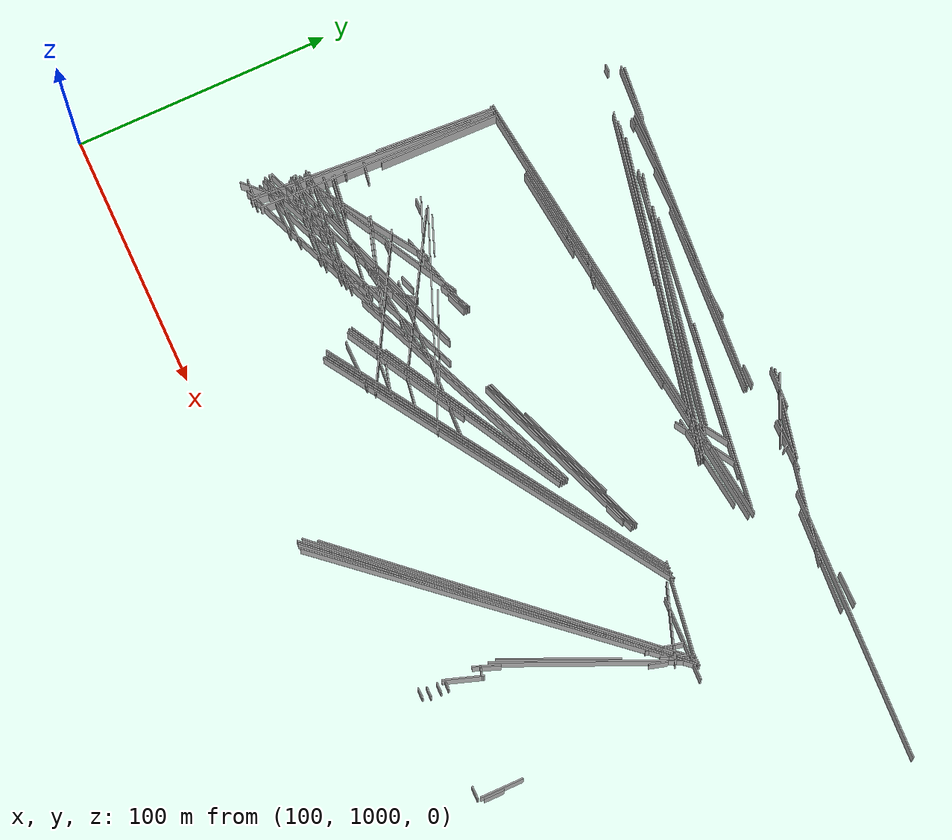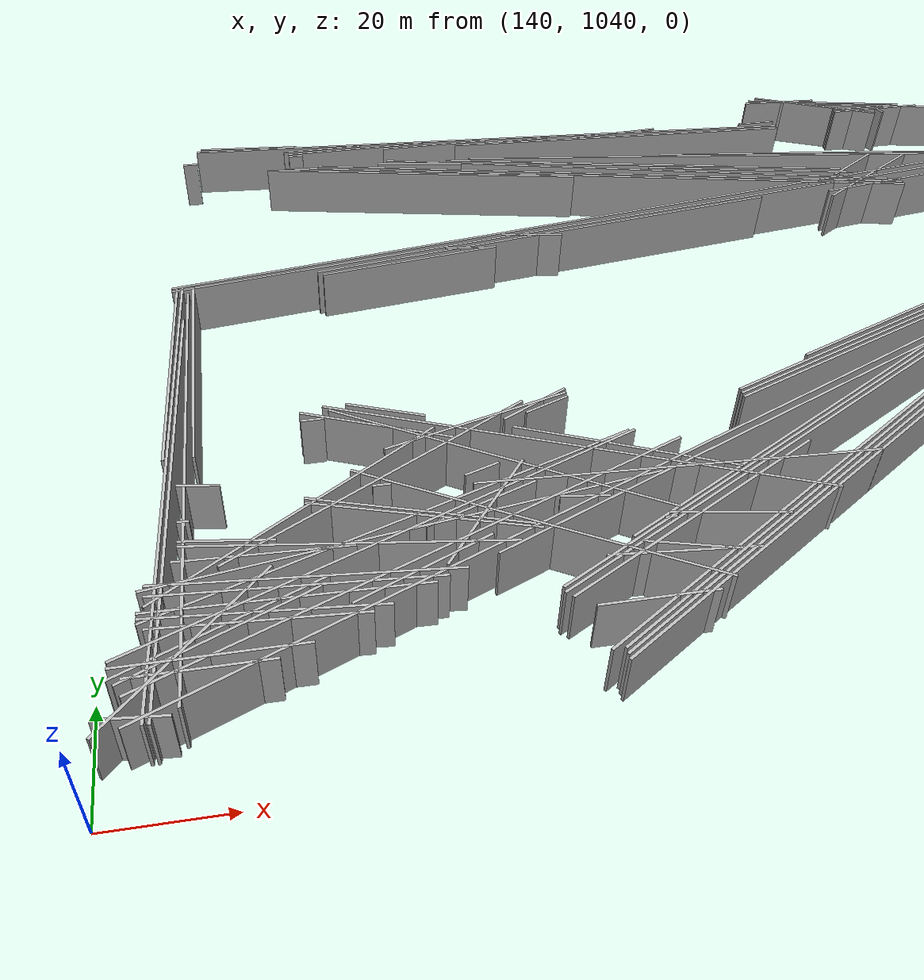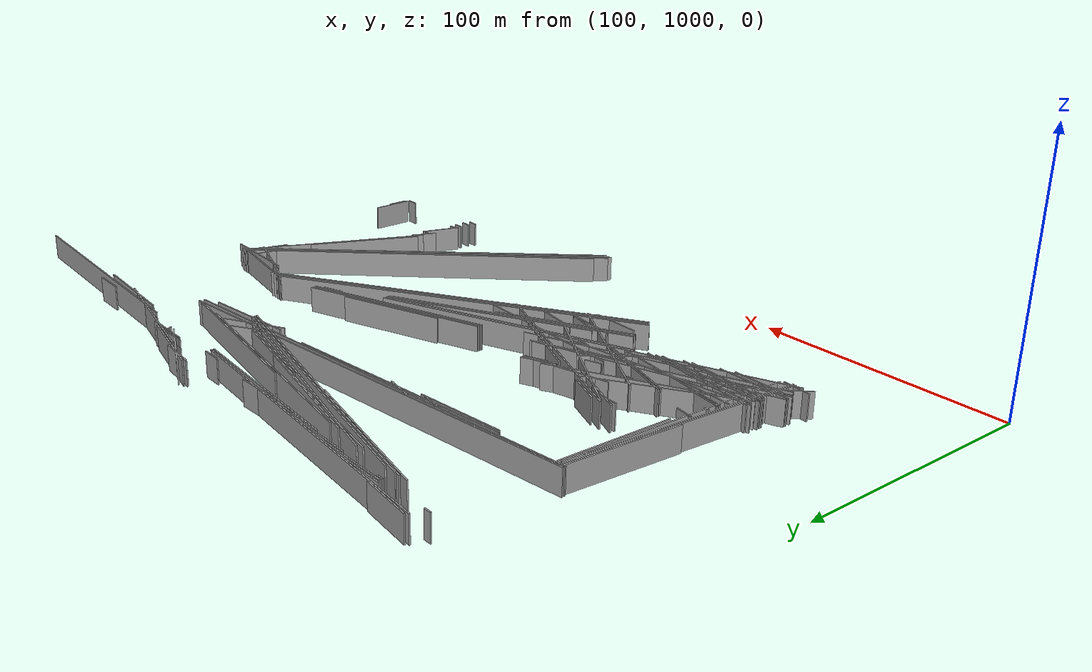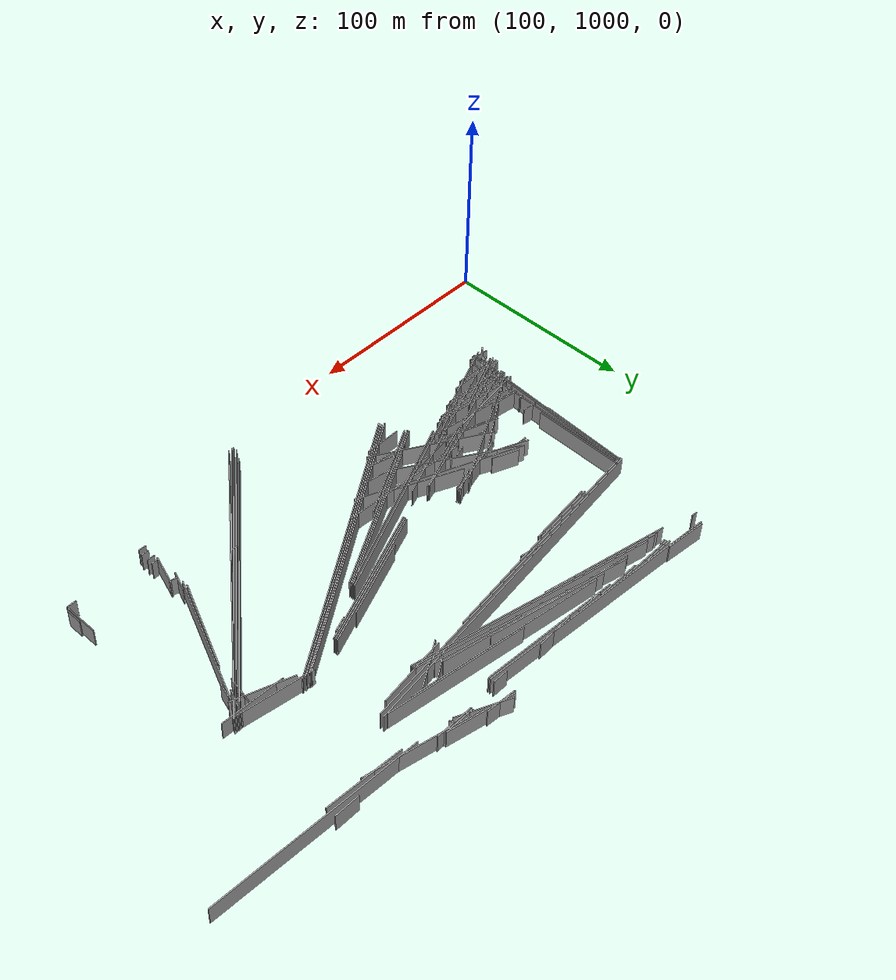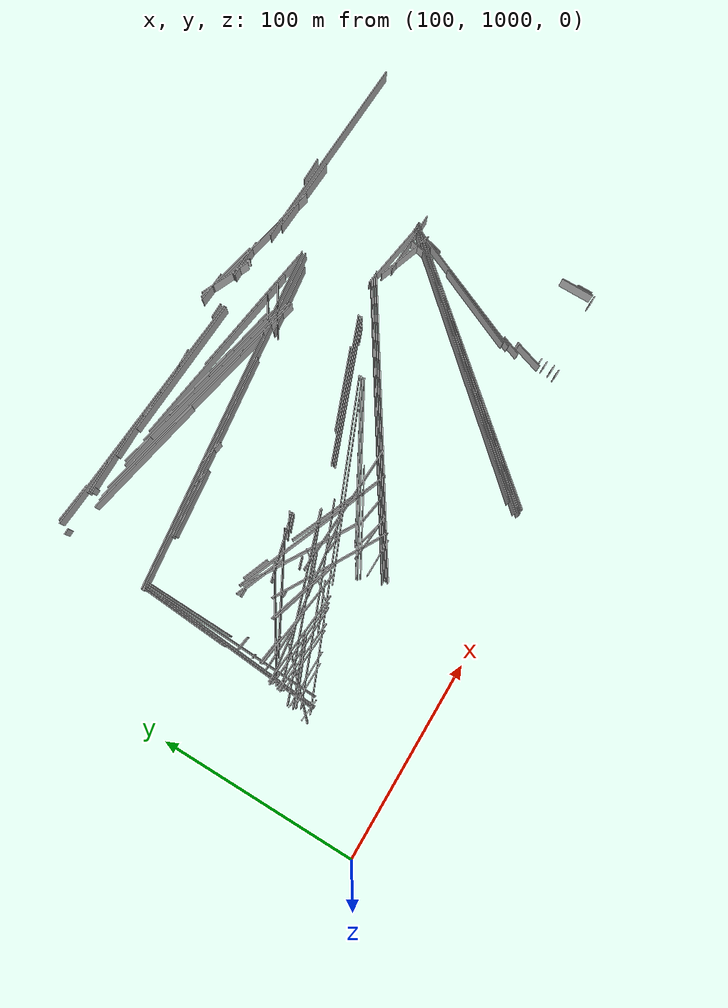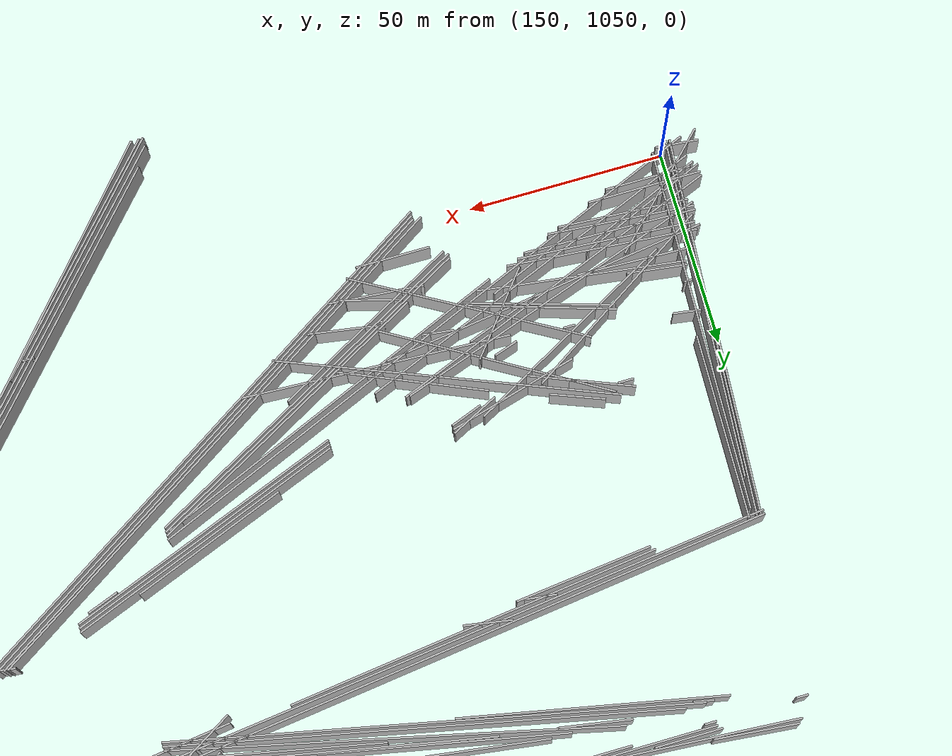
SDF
<sdf version="1.6">
 <model name="Worldsegments">
  <static>1</static>
  <link name="Wall_31">
   <pose>243.5 1156.0 5.0 0 0 0.12095365</pose>
   <collision name="Wall_31_Collision"><geometry><box><size>182.3321 0.5 10.0</size></box></geometry></collision>
   <visual name="Wall_31_Visual"><geometry><box><size>182.3321 0.5 10.0</size></box></geometry></visual>
  </link>
  <link name="Wall_35">
   <pose>219.5 1080.5 5.0 0 0 0.4000217</pose>
   <collision name="Wall_35_Collision">
    <geometry><box><size>161.77144 0.5 10.0</size></box></geometry>
   </collision>
   <visual name="Wall_35_Visual"><geometry><box><size>161.77144 0.5 10.0</size></box></geometry></visual>
  </link>
  <link name="Wall_36">
   <pose>187.5 1080.0 5.0 0 0 0.3328202</pose>
   <collision name="Wall_36_Collision"><geometry><box><size>85.70297 0.5 10.0</size></box></geometry></collision>
   <visual name="Wall_36_Visual"><geometry><box><size>85.70297 0.5 10.0</size></box></geometry></visual>
  </link>
  <link name="Wall_39">
   <pose>386.5 1185.0 5.0 0 0 -0.03736578</pose>
   <collision name="Wall_39_Collision">
    <geometry><box><size>107.07474 0.5 10.0</size></box></geometry>
   </collision>
   <visual name="Wall_39_Visual"><geometry><box><size>107.07474 0.5 10.0</size></box></geometry></visual>
  </link>
  <link name="Wall_46">
   <pose>285.0 1113.5 5.0 0 0 0.36813077</pose>
   <collision name="Wall_46_Collision">
    <geometry><box><size>75.026665 0.5 10.0</size></box></geometry>
   </collision>
   <visual name="Wall_46_Visual"><geometry><box><size>75.026665 0.5 10.0</size></box></geometry></visual>
  </link>
  <link name="Wall_52">
   <pose>285.0 1114.5 5.0 0 0 0.36813077</pose>
   <collision name="Wall_52_Collision">
    <geometry><box><size>75.026665 0.5 10.0</size></box></geometry>
   </collision>
   <visual name="Wall_52_Visual"><geometry><box><size>75.026665 0.5 10.0</size></box></geometry></visual>
  </link>
  <link name="Wall_54">
   <pose>254.0 1173.5 5.0 0 0 -0.22747499</pose>
   <collision name="Wall_54_Collision">
    <geometry><box><size>110.85576 0.5 10.0</size></box></geometry>
   </collision>
   <visual name="Wall_54_Visual"><geometry><box><size>110.85576 0.5 10.0</size></box></geometry></visual>
  </link>
  <link name="Wall_63">
   <pose>244.0 1172.5 5.0 0 0 -0.20788993</pose>
   <collision name="Wall_63_Collision">
    <geometry><box><size>130.81667 0.5 10.0</size></box></geometry>
   </collision>
   <visual name="Wall_63_Visual"><geometry><box><size>130.81667 0.5 10.0</size></box></geometry></visual>
  </link>
  <link name="Wall_78">
   <pose>365.5 1125.5 5.0 0 0 -0.03029376</pose>
   <collision name="Wall_78_Collision"><geometry><box><size>33.01515 0.5 10.0</size></box></geometry></collision>
   <visual name="Wall_78_Visual"><geometry><box><size>33.01515 0.5 10.0</size></box></geometry></visual>
  </link>
  <link name="Wall_85">
   <pose>278.5 1091.0 5.0 0 0 0.57332474</pose>
   <collision name="Wall_85_Collision">
    <geometry><box><size>151.17209 0.5 10.0</size></box></geometry>
   </collision>
   <visual name="Wall_85_Visual"><geometry><box><size>151.17209 0.5 10.0</size></box></geometry></visual>
  </link>
  <link name="Wall_86">
   <pose>253.0 1188.0 5.0 0 0 -0.0540015</pose>
   <collision name="Wall_86_Collision"><geometry><box><size>74.10803 0.5 10.0</size></box></geometry></collision>
   <visual name="Wall_86_Visual"><geometry><box><size>74.10803 0.5 10.0</size></box></geometry></visual>
  </link>
  <link name="Wall_89">
   <pose>234.0 1084.5 5.0 0 0 -0.044089057</pose>
   <collision name="Wall_89_Collision"><geometry><box><size>68.06615 0.5 10.0</size></box></geometry></collision>
   <visual name="Wall_89_Visual"><geometry><box><size>68.06615 0.5 10.0</size></box></geometry></visual>
  </link>
  <link name="Wall_92">
   <pose>360.0 1184.0 5.0 0 0 -0.049958397</pose>
   <collision name="Wall_92_Collision"><geometry><box><size>40.04997 0.5 10.0</size></box></geometry></collision>
   <visual name="Wall_92_Visual"><geometry><box><size>40.04997 0.5 10.0</size></box></geometry></visual>
  </link>
  <link name="Wall_97">
   <pose>327.0 1069.5 5.0 0 0 0.8550527</pose>
   <collision name="Wall_97_Collision"><geometry><box><size>152.3975 0.5 10.0</size></box></geometry></collision>
   <visual name="Wall_97_Visual"><geometry><box><size>152.3975 0.5 10.0</size></box></geometry></visual>
  </link>
  <link name="Wall_99">
   <pose>325.0 1070.5 5.0 0 0 0.8365164</pose>
   <collision name="Wall_99_Collision"><geometry><box><size>152.2268 0.5 10.0</size></box></geometry></collision>
   <visual name="Wall_99_Visual"><geometry><box><size>152.2268 0.5 10.0</size></box></geometry></visual>
  </link>
  <link name="Wall_112">
   <pose>243.5 1157.5 5.0 0 0 0.12639442</pose>
   <collision name="Wall_112_Collision">
    <geometry><box><size>182.45547 0.5 10.0</size></box></geometry>
   </collision>
   <visual name="Wall_112_Visual"><geometry><box><size>182.45547 0.5 10.0</size></box></geometry></visual>
  </link>
  <link name="Wall_115">
   <pose>146.5 1050.5 5.0 0 0 -0.09065989</pose>
   <collision name="Wall_115_Collision">
    <geometry><box><size>11.045361 0.5 10.0</size></box></geometry>
   </collision>
   <visual name="Wall_115_Visual"><geometry><box><size>11.045361 0.5 10.0</size></box></geometry></visual>
  </link>
  <link name="Wall_133">
   <pose>279.5 1090.5 5.0 0 0 0.5717292</pose>
   <collision name="Wall_133_Collision">
    <geometry><box><size>153.39491 0.5 10.0</size></box></geometry>
   </collision>
   <visual name="Wall_133_Visual"><geometry><box><size>153.39491 0.5 10.0</size></box></geometry></visual>
  </link>
  <link name="Wall_135">
   <pose>268.5 1177.0 5.0 0 0 -0.13773619</pose>
   <collision name="Wall_135_Collision">
    <geometry><box><size>101.96568 0.5 10.0</size></box></geometry>
   </collision>
   <visual name="Wall_135_Visual"><geometry><box><size>101.96568 0.5 10.0</size></box></geometry></visual>
  </link>
  <link name="Wall_139">
   <pose>246.5 1173.0 5.0 0 0 -0.20831557</pose>
   <collision name="Wall_139_Collision">
    <geometry><box><size>125.71794 0.5 10.0</size></box></geometry>
   </collision>
   <visual name="Wall_139_Visual"><geometry><box><size>125.71794 0.5 10.0</size></box></geometry></visual>
  </link>
  <link name="Wall_140">
   <pose>224.5 1191.5 5.0 0 0 -0.0685945</pose>
   <collision name="Wall_140_Collision">
    <geometry><box><size>131.30879 0.5 10.0</size></box></geometry>
   </collision>
   <visual name="Wall_140_Visual"><geometry><box><size>131.30879 0.5 10.0</size></box></geometry></visual>
  </link>
  <link name="Wall_142">
   <pose>385.5 1033.0 5.0 0 0 0.0</pose>
   <collision name="Wall_142_Collision"><geometry><box><size>5.0 0.5 10.0</size></box></geometry></collision>
   <visual name="Wall_142_Visual"><geometry><box><size>5.0 0.5 10.0</size></box></geometry></visual>
  </link>
  <link name="Wall_143">
   <pose>309.5 1161.5 5.0 0 0 0.13432144</pose>
   <collision name="Wall_143_Collision">
    <geometry><box><size>37.336308 0.5 10.0</size></box></geometry>
   </collision>
   <visual name="Wall_143_Visual"><geometry><box><size>37.336308 0.5 10.0</size></box></geometry></visual>
  </link>
  <link name="Wall_144">
   <pose>285.0 1112.5 5.0 0 0 0.36813077</pose>
   <collision name="Wall_144_Collision">
    <geometry><box><size>75.026665 0.5 10.0</size></box></geometry>
   </collision>
   <visual name="Wall_144_Visual"><geometry><box><size>75.026665 0.5 10.0</size></box></geometry></visual>
  </link>
  <link name="Wall_146">
   <pose>325.5 1073.0 5.0 0 0 0.8390053</pose>
   <collision name="Wall_146_Collision">
    <geometry><box><size>145.16542 0.5 10.0</size></box></geometry>
   </collision>
   <visual name="Wall_146_Visual"><geometry><box><size>145.16542 0.5 10.0</size></box></geometry></visual>
  </link>
  <link name="Wall_153">
   <pose>151.5 1097.5 5.0 0 0 1.4987563</pose>
   <collision name="Wall_153_Collision">
    <geometry><box><size>97.25225 0.5 10.0</size></box></geometry>
   </collision>
   <visual name="Wall_153_Visual"><geometry><box><size>97.25225 0.5 10.0</size></box></geometry></visual>
  </link>
  <link name="Wall_162">
   <pose>169.0 1067.5 5.0 0 0 -0.02272336</pose>
   <collision name="Wall_162_Collision">
    <geometry><box><size>44.011364 0.5 10.0</size></box></geometry>
   </collision>
   <visual name="Wall_162_Visual"><geometry><box><size>44.011364 0.5 10.0</size></box></geometry></visual>
  </link>
  <link name="Wall_168">
   <pose>251.5 1086.5 5.0 0 0 0.5050985</pose>
   <collision name="Wall_168_Collision">
    <geometry><box><size>97.128784 0.5 10.0</size></box></geometry>
   </collision>
   <visual name="Wall_168_Visual"><geometry><box><size>97.128784 0.5 10.0</size></box></geometry></visual>
  </link>
  <link name="Wall_181">
   <pose>228.5 1153.0 5.0 0 0 0.12565033</pose>
   <collision name="Wall_181_Collision"><geometry><box><size>95.7549 0.5 10.0</size></box></geometry></collision>
   <visual name="Wall_181_Visual"><geometry><box><size>95.7549 0.5 10.0</size></box></geometry></visual>
  </link>
  <link name="Wall_199">
   <pose>172.0 1071.0 5.0 0 0 -0.08314123</pose>
   <collision name="Wall_199_Collision">
    <geometry><box><size>48.166378 0.5 10.0</size></box></geometry>
   </collision>
   <visual name="Wall_199_Visual"><geometry><box><size>48.166378 0.5 10.0</size></box></geometry></visual>
  </link>
  <link name="Wall_203">
   <pose>359.5 1092.0 5.0 0 0 1.1538982</pose>
   <collision name="Wall_203_Collision">
    <geometry><box><size>76.55717 0.5 10.0</size></box></geometry>
   </collision>
   <visual name="Wall_203_Visual"><geometry><box><size>76.55717 0.5 10.0</size></box></geometry></visual>
  </link>
  <link name="Wall_207">
   <pose>160.5 1080.0 5.0 0 0 -0.13255154</pose>
   <collision name="Wall_207_Collision">
    <geometry><box><size>15.132746 0.5 10.0</size></box></geometry>
   </collision>
   <visual name="Wall_207_Visual"><geometry><box><size>15.132746 0.5 10.0</size></box></geometry></visual>
  </link>
  <link name="Wall_212">
   <pose>357.0 1129.0 5.0 0 0 -0.14888994</pose>
   <collision name="Wall_212_Collision"><geometry><box><size>40.4475 0.5 10.0</size></box></geometry></collision>
   <visual name="Wall_212_Visual"><geometry><box><size>40.4475 0.5 10.0</size></box></geometry></visual>
  </link>
  <link name="Wall_214">
   <pose>154.5 1097.5 5.0 0 0 1.5385494</pose>
   <collision name="Wall_214_Collision">
    <geometry><box><size>93.04838 0.5 10.0</size></box></geometry>
   </collision>
   <visual name="Wall_214_Visual"><geometry><box><size>93.04838 0.5 10.0</size></box></geometry></visual>
  </link>
  <link name="Wall_215">
   <pose>194.0 1192.0 5.0 0 0 0.0</pose>
   <collision name="Wall_215_Collision"><geometry><box><size>30.0 0.5 10.0</size></box></geometry></collision>
   <visual name="Wall_215_Visual"><geometry><box><size>30.0 0.5 10.0</size></box></geometry></visual>
  </link>
  <link name="Wall_219">
   <pose>344.0 1030.0 5.0 0 0 0.0</pose>
   <collision name="Wall_219_Collision"><geometry><box><size>4.0 0.5 10.0</size></box></geometry></collision>
   <visual name="Wall_219_Visual"><geometry><box><size>4.0 0.5 10.0</size></box></geometry></visual>
  </link>
  <link name="Wall_221">
   <pose>276.0 1091.5 5.0 0 0 0.57133746</pose>
   <collision name="Wall_221_Collision">
    <geometry><box><size>149.78986 0.5 10.0</size></box></geometry>
   </collision>
   <visual name="Wall_221_Visual"><geometry><box><size>149.78986 0.5 10.0</size></box></geometry></visual>
  </link>
  <link name="Wall_227">
   <pose>157.5 1191.0 5.0 0 0 0.0</pose>
   <collision name="Wall_227_Collision"><geometry><box><size>3.0 0.5 10.0</size></box></geometry></collision>
   <visual name="Wall_227_Visual"><geometry><box><size>3.0 0.5 10.0</size></box></geometry></visual>
  </link>
  <link name="Wall_228">
   <pose>159.5 1064.0 5.0 0 0 0.4012288</pose>
   <collision name="Wall_228_Collision">
    <geometry><box><size>35.846897 0.5 10.0</size></box></geometry>
   </collision>
   <visual name="Wall_228_Visual"><geometry><box><size>35.846897 0.5 10.0</size></box></geometry></visual>
  </link>
  <link name="Wall_230">
   <pose>284.5 1115.5 5.0 0 0 0.36717382</pose>
   <collision name="Wall_230_Collision">
    <geometry><box><size>41.785164 0.5 10.0</size></box></geometry>
   </collision>
   <visual name="Wall_230_Visual"><geometry><box><size>41.785164 0.5 10.0</size></box></geometry></visual>
  </link>
  <link name="Wall_236">
   <pose>302.5 1194.5 5.0 0 0 -0.41450688</pose>
   <collision name="Wall_236_Collision"><geometry><box><size>27.313 0.5 10.0</size></box></geometry></collision>
   <visual name="Wall_236_Visual"><geometry><box><size>27.313 0.5 10.0</size></box></geometry></visual>
  </link>
  <link name="Wall_238">
   <pose>370.5 1121.0 5.0 0 0 1.1760052</pose>
   <collision name="Wall_238_Collision"><geometry><box><size>13.0 0.5 10.0</size></box></geometry></collision>
   <visual name="Wall_238_Visual"><geometry><box><size>13.0 0.5 10.0</size></box></geometry></visual>
  </link>
  <link name="Wall_239">
   <pose>199.5 1148.0 5.0 0 0 0.11379201</pose>
   <collision name="Wall_239_Collision">
    <geometry><box><size>35.22783 0.5 10.0</size></box></geometry>
   </collision>
   <visual name="Wall_239_Visual"><geometry><box><size>35.22783 0.5 10.0</size></box></geometry></visual>
  </link>
  <link name="Wall_252">
   <pose>186.0 1077.0 5.0 0 0 0.37649032</pose>
   <collision name="Wall_252_Collision">
    <geometry><box><size>92.47703 0.5 10.0</size></box></geometry>
   </collision>
   <visual name="Wall_252_Visual"><geometry><box><size>92.47703 0.5 10.0</size></box></geometry></visual>
  </link>
  <link name="Wall_254">
   <pose>353.5 1081.0 5.0 0 0 1.1459641</pose>
   <collision name="Wall_254_Collision">
    <geometry><box><size>46.09772 0.5 10.0</size></box></geometry>
   </collision>
   <visual name="Wall_254_Visual"><geometry><box><size>46.09772 0.5 10.0</size></box></geometry></visual>
  </link>
  <link name="Wall_259">
   <pose>296.0 1174.0 5.0 0 0 -0.13800602</pose>
   <collision name="Wall_259_Collision">
    <geometry><box><size>72.691124 0.5 10.0</size></box></geometry>
   </collision>
   <visual name="Wall_259_Visual"><geometry><box><size>72.691124 0.5 10.0</size></box></geometry></visual>
  </link>
  <link name="Wall_265">
   <pose>211.0 1150.5 5.0 0 0 -0.124354996</pose>
   <collision name="Wall_265_Collision">
    <geometry><box><size>8.062258 0.5 10.0</size></box></geometry>
   </collision>
   <visual name="Wall_265_Visual"><geometry><box><size>8.062258 0.5 10.0</size></box></geometry></visual>
  </link>
  <link name="Wall_276">
   <pose>211.5 1191.0 5.0 0 0 0.0</pose>
   <collision name="Wall_276_Collision"><geometry><box><size>23.0 0.5 10.0</size></box></geometry></collision>
   <visual name="Wall_276_Visual"><geometry><box><size>23.0 0.5 10.0</size></box></geometry></visual>
  </link>
  <link name="Wall_277">
   <pose>222.5 1059.0 5.0 0 0 0.0</pose>
   <collision name="Wall_277_Collision"><geometry><box><size>19.0 0.5 10.0</size></box></geometry></collision>
   <visual name="Wall_277_Visual"><geometry><box><size>19.0 0.5 10.0</size></box></geometry></visual>
  </link>
  <link name="Wall_284">
   <pose>190.5 1072.5 5.0 0 0 0.3861774</pose>
   <collision name="Wall_284_Collision">
    <geometry><box><size>98.23441 0.5 10.0</size></box></geometry>
   </collision>
   <visual name="Wall_284_Visual"><geometry><box><size>98.23441 0.5 10.0</size></box></geometry></visual>
  </link>
  <link name="Wall_291">
   <pose>206.5 1179.5 5.0 0 0 -0.19739556</pose>
   <collision name="Wall_291_Collision">
    <geometry><box><size>66.287254 0.5 10.0</size></box></geometry>
   </collision>
   <visual name="Wall_291_Visual"><geometry><box><size>66.287254 0.5 10.0</size></box></geometry></visual>
  </link>
  <link name="Wall_296">
   <pose>230.5 1068.0 5.0 0 0 -0.26060238</pose>
   <collision name="Wall_296_Collision">
    <geometry><box><size>15.524175 0.5 10.0</size></box></geometry>
   </collision>
   <visual name="Wall_296_Visual"><geometry><box><size>15.524175 0.5 10.0</size></box></geometry></visual>
  </link>
  <link name="Wall_297">
   <pose>263.5 1173.5 5.0 0 0 -0.1916485</pose>
   <collision name="Wall_297_Collision">
    <geometry><box><size>68.24954 0.5 10.0</size></box></geometry>
   </collision>
   <visual name="Wall_297_Visual"><geometry><box><size>68.24954 0.5 10.0</size></box></geometry></visual>
  </link>
  <link name="Wall_317">
   <pose>157.5 1059.0 5.0 0 0 0.0</pose>
   <collision name="Wall_317_Collision"><geometry><box><size>29.0 0.5 10.0</size></box></geometry></collision>
   <visual name="Wall_317_Visual"><geometry><box><size>29.0 0.5 10.0</size></box></geometry></visual>
  </link>
  <link name="Wall_318">
   <pose>225.0 1153.0 5.0 0 0 -0.16514868</pose>
   <collision name="Wall_318_Collision">
    <geometry><box><size>12.165525 0.5 10.0</size></box></geometry>
   </collision>
   <visual name="Wall_318_Visual"><geometry><box><size>12.165525 0.5 10.0</size></box></geometry></visual>
  </link>
  <link name="Wall_321">
   <pose>238.5 1073.5 5.0 0 0 -0.15660188</pose>
   <collision name="Wall_321_Collision">
    <geometry><box><size>19.235384 0.5 10.0</size></box></geometry>
   </collision>
   <visual name="Wall_321_Visual"><geometry><box><size>19.235384 0.5 10.0</size></box></geometry></visual>
  </link>
  <link name="Wall_324">
   <pose>346.0 1053.5 5.0 0 0 -0.24497867</pose>
   <collision name="Wall_324_Collision">
    <geometry><box><size>4.1231055 0.5 10.0</size></box></geometry>
   </collision>
   <visual name="Wall_324_Visual"><geometry><box><size>4.1231055 0.5 10.0</size></box></geometry></visual>
  </link>
  <link name="Wall_331">
   <pose>191.0 1080.5 5.0 0 0 -0.2965458</pose>
   <collision name="Wall_331_Collision">
    <geometry><box><size>37.64306 0.5 10.0</size></box></geometry>
   </collision>
   <visual name="Wall_331_Visual"><geometry><box><size>37.64306 0.5 10.0</size></box></geometry></visual>
  </link>
  <link name="Wall_332">
   <pose>320.5 1064.0 5.0 0 0 0.8411778</pose>
   <collision name="Wall_332_Collision">
    <geometry><box><size>139.51703 0.5 10.0</size></box></geometry>
   </collision>
   <visual name="Wall_332_Visual"><geometry><box><size>139.51703 0.5 10.0</size></box></geometry></visual>
  </link>
  <link name="Wall_334">
   <pose>156.0 1057.0 5.0 0 0 0.0</pose>
   <collision name="Wall_334_Collision"><geometry><box><size>22.0 0.5 10.0</size></box></geometry></collision>
   <visual name="Wall_334_Visual"><geometry><box><size>22.0 0.5 10.0</size></box></geometry></visual>
  </link>
  <link name="Wall_341">
   <pose>186.5 1102.0 5.0 0 0 -0.38050637</pose>
   <collision name="Wall_341_Collision">
    <geometry><box><size>26.925823 0.5 10.0</size></box></geometry>
   </collision>
   <visual name="Wall_341_Visual"><geometry><box><size>26.925823 0.5 10.0</size></box></geometry></visual>
  </link>
  <link name="Wall_344">
   <pose>247.0 1090.5 5.0 0 0 0.40094963</pose>
   <collision name="Wall_344_Collision">
    <geometry><box><size>99.92497 0.5 10.0</size></box></geometry>
   </collision>
   <visual name="Wall_344_Visual"><geometry><box><size>99.92497 0.5 10.0</size></box></geometry></visual>
  </link>
  <link name="Wall_345">
   <pose>207.0 1183.5 5.0 0 0 -0.16514868</pose>
   <collision name="Wall_345_Collision">
    <geometry><box><size>18.248287 0.5 10.0</size></box></geometry>
   </collision>
   <visual name="Wall_345_Visual"><geometry><box><size>18.248287 0.5 10.0</size></box></geometry></visual>
  </link>
  <link name="Wall_348">
   <pose>345.0 1033.0 5.0 0 0 0.0</pose>
   <collision name="Wall_348_Collision"><geometry><box><size>4.0 0.5 10.0</size></box></geometry></collision>
   <visual name="Wall_348_Visual"><geometry><box><size>4.0 0.5 10.0</size></box></geometry></visual>
  </link>
  <link name="Wall_357">
   <pose>165.5 1065.5 5.0 0 0 -0.0809041</pose>
   <collision name="Wall_357_Collision">
    <geometry><box><size>37.12142 0.5 10.0</size></box></geometry>
   </collision>
   <visual name="Wall_357_Visual"><geometry><box><size>37.12142 0.5 10.0</size></box></geometry></visual>
  </link>
  <link name="Wall_365">
   <pose>214.0 1103.0 5.0 0 0 0.4636476</pose>
   <collision name="Wall_365_Collision">
    <geometry><box><size>13.416408 0.5 10.0</size></box></geometry>
   </collision>
   <visual name="Wall_365_Visual"><geometry><box><size>13.416408 0.5 10.0</size></box></geometry></visual>
  </link>
  <link name="Wall_371">
   <pose>218.0 1092.0 5.0 0 0 -0.38050637</pose>
   <collision name="Wall_371_Collision">
    <geometry><box><size>86.162636 0.5 10.0</size></box></geometry>
   </collision>
   <visual name="Wall_371_Visual"><geometry><box><size>86.162636 0.5 10.0</size></box></geometry></visual>
  </link>
  <link name="Wall_379">
   <pose>156.5 1122.5 5.0 0 0 1.549523</pose>
   <collision name="Wall_379_Collision">
    <geometry><box><size>47.010635 0.5 10.0</size></box></geometry>
   </collision>
   <visual name="Wall_379_Visual"><geometry><box><size>47.010635 0.5 10.0</size></box></geometry></visual>
  </link>
  <link name="Wall_381">
   <pose>251.5 1085.5 5.0 0 0 0.5050985</pose>
   <collision name="Wall_381_Collision">
    <geometry><box><size>97.128784 0.5 10.0</size></box></geometry>
   </collision>
   <visual name="Wall_381_Visual"><geometry><box><size>97.128784 0.5 10.0</size></box></geometry></visual>
  </link>
  <link name="Wall_385">
   <pose>332.0 1189.0 5.0 0 0 -0.20401798</pose>
   <collision name="Wall_385_Collision">
    <geometry><box><size>59.22837 0.5 10.0</size></box></geometry>
   </collision>
   <visual name="Wall_385_Visual"><geometry><box><size>59.22837 0.5 10.0</size></box></geometry></visual>
  </link>
  <link name="Wall_390">
   <pose>277.5 1091.5 5.0 0 0 0.574968</pose>
   <collision name="Wall_390_Collision">
    <geometry><box><size>148.94966 0.5 10.0</size></box></geometry>
   </collision>
   <visual name="Wall_390_Visual"><geometry><box><size>148.94966 0.5 10.0</size></box></geometry></visual>
  </link>
  <link name="Wall_393">
   <pose>152.0 1092.5 5.0 0 0 1.5019399</pose>
   <collision name="Wall_393_Collision">
    <geometry><box><size>87.20665 0.5 10.0</size></box></geometry>
   </collision>
   <visual name="Wall_393_Visual"><geometry><box><size>87.20665 0.5 10.0</size></box></geometry></visual>
  </link>
  <link name="Wall_401">
   <pose>345.0 1056.0 5.0 0 0 1.19029</pose>
   <collision name="Wall_401_Collision">
    <geometry><box><size>10.770329 0.5 10.0</size></box></geometry>
   </collision>
   <visual name="Wall_401_Visual"><geometry><box><size>10.770329 0.5 10.0</size></box></geometry></visual>
  </link>
  <link name="Wall_406">
   <pose>300.5 1168.5 5.0 0 0 0.5667292</pose>
   <collision name="Wall_406_Collision">
    <geometry><box><size>13.038404 0.5 10.0</size></box></geometry>
   </collision>
   <visual name="Wall_406_Visual"><geometry><box><size>13.038404 0.5 10.0</size></box></geometry></visual>
  </link>
  <link name="Wall_411">
   <pose>201.0 1080.0 5.0 0 0 0.8960554</pose>
   <collision name="Wall_411_Collision">
    <geometry><box><size>25.612497 0.5 10.0</size></box></geometry>
   </collision>
   <visual name="Wall_411_Visual"><geometry><box><size>25.612497 0.5 10.0</size></box></geometry></visual>
  </link>
  <link name="Wall_417">
   <pose>159.0 1062.5 5.0 0 0 0.40890783</pose>
   <collision name="Wall_417_Collision">
    <geometry><box><size>32.695564 0.5 10.0</size></box></geometry>
   </collision>
   <visual name="Wall_417_Visual"><geometry><box><size>32.695564 0.5 10.0</size></box></geometry></visual>
  </link>
  <link name="Wall_418">
   <pose>189.0 1078.0 5.0 0 0 0.14189705</pose>
   <collision name="Wall_418_Collision">
    <geometry><box><size>84.85281 0.5 10.0</size></box></geometry>
   </collision>
   <visual name="Wall_418_Visual"><geometry><box><size>84.85281 0.5 10.0</size></box></geometry></visual>
  </link>
  <link name="Wall_421">
   <pose>316.5 1190.0 5.0 0 0 -1.1071488</pose>
   <collision name="Wall_421_Collision">
    <geometry><box><size>2.236068 0.5 10.0</size></box></geometry>
   </collision>
   <visual name="Wall_421_Visual"><geometry><box><size>2.236068 0.5 10.0</size></box></geometry></visual>
  </link>
  <link name="Wall_425">
   <pose>365.5 1118.0 5.0 0 0 1.359703</pose>
   <collision name="Wall_425_Collision">
    <geometry><box><size>14.3178215 0.5 10.0</size></box></geometry>
   </collision>
   <visual name="Wall_425_Visual"><geometry><box><size>14.3178215 0.5 10.0</size></box></geometry></visual>
  </link>
  <link name="Wall_431">
   <pose>208.0 1076.5 5.0 0 0 -0.52113813</pose>
   <collision name="Wall_431_Collision">
    <geometry><box><size>62.26556 0.5 10.0</size></box></geometry>
   </collision>
   <visual name="Wall_431_Visual"><geometry><box><size>62.26556 0.5 10.0</size></box></geometry></visual>
  </link>
  <link name="Wall_433">
   <pose>179.0 1076.5 5.0 0 0 -0.13381098</pose>
   <collision name="Wall_433_Collision">
    <geometry><box><size>52.46904 0.5 10.0</size></box></geometry>
   </collision>
   <visual name="Wall_433_Visual"><geometry><box><size>52.46904 0.5 10.0</size></box></geometry></visual>
  </link>
  <link name="Wall_441">
   <pose>345.0 1037.0 5.0 0 0 0.0</pose>
   <collision name="Wall_441_Collision"><geometry><box><size>4.0 0.5 10.0</size></box></geometry></collision>
   <visual name="Wall_441_Visual"><geometry><box><size>4.0 0.5 10.0</size></box></geometry></visual>
  </link>
  <link name="Wall_442">
   <pose>152.5 1122.5 5.0 0 0 1.507053</pose>
   <collision name="Wall_442_Collision">
    <geometry><box><size>47.095646 0.5 10.0</size></box></geometry>
   </collision>
   <visual name="Wall_442_Visual"><geometry><box><size>47.095646 0.5 10.0</size></box></geometry></visual>
  </link>
  <link name="Wall_443">
   <pose>154.0 1085.0 5.0 0 0 0.0</pose>
   <collision name="Wall_443_Collision"><geometry><box><size>2.0 0.5 10.0</size></box></geometry></collision>
   <visual name="Wall_443_Visual"><geometry><box><size>2.0 0.5 10.0</size></box></geometry></visual>
  </link>
  <link name="Wall_448">
   <pose>358.5 1124.0 5.0 0 0 -0.33205947</pose>
   <collision name="Wall_448_Collision">
    <geometry><box><size>30.675724 0.5 10.0</size></box></geometry>
   </collision>
   <visual name="Wall_448_Visual"><geometry><box><size>30.675724 0.5 10.0</size></box></geometry></visual>
  </link>
  <link name="Wall_462">
   <pose>188.5 1105.5 5.0 0 0 -0.36717382</pose>
   <collision name="Wall_462_Collision">
    <geometry><box><size>13.928389 0.5 10.0</size></box></geometry>
   </collision>
   <visual name="Wall_462_Visual"><geometry><box><size>13.928389 0.5 10.0</size></box></geometry></visual>
  </link>
  <link name="Wall_466">
   <pose>217.0 1080.5 5.0 0 0 -0.124354996</pose>
   <collision name="Wall_466_Collision">
    <geometry><box><size>8.062258 0.5 10.0</size></box></geometry>
   </collision>
   <visual name="Wall_466_Visual"><geometry><box><size>8.062258 0.5 10.0</size></box></geometry></visual>
  </link>
  <link name="Wall_468">
   <pose>345.5 1046.5 5.0 0 0 1.2490457</pose>
   <collision name="Wall_468_Collision">
    <geometry><box><size>15.811388 0.5 10.0</size></box></geometry>
   </collision>
   <visual name="Wall_468_Visual"><geometry><box><size>15.811388 0.5 10.0</size></box></geometry></visual>
  </link>
  <link name="Wall_470">
   <pose>388.0 1042.5 5.0 0 0 -1.5707964</pose>
   <collision name="Wall_470_Collision"><geometry><box><size>17.0 0.5 10.0</size></box></geometry></collision>
   <visual name="Wall_470_Visual"><geometry><box><size>17.0 0.5 10.0</size></box></geometry></visual>
  </link>
  <link name="Wall_473">
   <pose>302.5 1164.0 5.0 0 0 0.5467888</pose>
   <collision name="Wall_473_Collision">
    <geometry><box><size>26.925823 0.5 10.0</size></box></geometry>
   </collision>
   <visual name="Wall_473_Visual"><geometry><box><size>26.925823 0.5 10.0</size></box></geometry></visual>
  </link>
  <link name="Wall_477">
   <pose>190.5 1081.5 5.0 0 0 -0.3045109</pose>
   <collision name="Wall_477_Collision">
    <geometry><box><size>36.687874 0.5 10.0</size></box></geometry>
   </collision>
   <visual name="Wall_477_Visual"><geometry><box><size>36.687874 0.5 10.0</size></box></geometry></visual>
  </link>
  <link name="Wall_478">
   <pose>243.0 1178.0 5.0 0 0 -0.19739556</pose>
   <collision name="Wall_478_Collision">
    <geometry><box><size>61.188232 0.5 10.0</size></box></geometry>
   </collision>
   <visual name="Wall_478_Visual"><geometry><box><size>61.188232 0.5 10.0</size></box></geometry></visual>
  </link>
  <link name="Wall_480">
   <pose>316.0 1191.0 5.0 0 0 0.0</pose>
   <collision name="Wall_480_Collision"><geometry><box><size>20.0 0.5 10.0</size></box></geometry></collision>
   <visual name="Wall_480_Visual"><geometry><box><size>20.0 0.5 10.0</size></box></geometry></visual>
  </link>
  <link name="Wall_483">
   <pose>186.5 1193.0 5.0 0 0 0.0</pose>
   <collision name="Wall_483_Collision"><geometry><box><size>17.0 0.5 10.0</size></box></geometry></collision>
   <visual name="Wall_483_Visual"><geometry><box><size>17.0 0.5 10.0</size></box></geometry></visual>
  </link>
  <link name="Wall_494">
   <pose>233.5 1074.0 5.0 0 0 0.5052902</pose>
   <collision name="Wall_494_Collision">
    <geometry><box><size>53.712196 0.5 10.0</size></box></geometry>
   </collision>
   <visual name="Wall_494_Visual"><geometry><box><size>53.712196 0.5 10.0</size></box></geometry></visual>
  </link>
  <link name="Wall_496">
   <pose>345.5 1040.0 5.0 0 0 0.0</pose>
   <collision name="Wall_496_Collision"><geometry><box><size>3.0 0.5 10.0</size></box></geometry></collision>
   <visual name="Wall_496_Visual"><geometry><box><size>3.0 0.5 10.0</size></box></geometry></visual>
  </link>
  <link name="Wall_498">
   <pose>170.5 1196.0 5.0 0 0 -0.094951704</pose>
   <collision name="Wall_498_Collision">
    <geometry><box><size>21.095022 0.5 10.0</size></box></geometry>
   </collision>
   <visual name="Wall_498_Visual"><geometry><box><size>21.095022 0.5 10.0</size></box></geometry></visual>
  </link>
  <link name="Wall_500">
   <pose>154.0 1061.0 5.0 0 0 0.7853982</pose>
   <collision name="Wall_500_Collision">
    <geometry><box><size>36.769554 0.5 10.0</size></box></geometry>
   </collision>
   <visual name="Wall_500_Visual"><geometry><box><size>36.769554 0.5 10.0</size></box></geometry></visual>
  </link>
  <link name="Wall_501">
   <pose>205.0 1091.5 5.0 0 0 -0.5375866</pose>
   <collision name="Wall_501_Collision">
    <geometry><box><size>60.53924 0.5 10.0</size></box></geometry>
   </collision>
   <visual name="Wall_501_Visual"><geometry><box><size>60.53924 0.5 10.0</size></box></geometry></visual>
  </link>
  <link name="Wall_505">
   <pose>172.0 1084.5 5.0 0 0 0.57344055</pose>
   <collision name="Wall_505_Collision">
    <geometry><box><size>57.14018 0.5 10.0</size></box></geometry>
   </collision>
   <visual name="Wall_505_Visual"><geometry><box><size>57.14018 0.5 10.0</size></box></geometry></visual>
  </link>
  <link name="Wall_507">
   <pose>286.0 1189.0 5.0 0 0 0.0</pose>
   <collision name="Wall_507_Collision"><geometry><box><size>8.0 0.5 10.0</size></box></geometry></collision>
   <visual name="Wall_507_Visual"><geometry><box><size>8.0 0.5 10.0</size></box></geometry></visual>
  </link>
  <link name="Wall_508">
   <pose>370.0 1113.5 5.0 0 0 1.2924967</pose>
   <collision name="Wall_508_Collision"><geometry><box><size>7.28011 0.5 10.0</size></box></geometry></collision>
   <visual name="Wall_508_Visual"><geometry><box><size>7.28011 0.5 10.0</size></box></geometry></visual>
  </link>
  <link name="Wall_513">
   <pose>389.0 1039.0 5.0 0 0 -1.5707964</pose>
   <collision name="Wall_513_Collision"><geometry><box><size>8.0 0.5 10.0</size></box></geometry></collision>
   <visual name="Wall_513_Visual"><geometry><box><size>8.0 0.5 10.0</size></box></geometry></visual>
  </link>
  <link name="Wall_517">
   <pose>258.0 1091.0 5.0 0 0 0.5070985</pose>
   <collision name="Wall_517_Collision">
    <geometry><box><size>82.36504 0.5 10.0</size></box></geometry>
   </collision>
   <visual name="Wall_517_Visual"><geometry><box><size>82.36504 0.5 10.0</size></box></geometry></visual>
  </link>
  <link name="Wall_518">
   <pose>313.0 1192.0 5.0 0 0 0.0</pose>
   <collision name="Wall_518_Collision"><geometry><box><size>14.0 0.5 10.0</size></box></geometry></collision>
   <visual name="Wall_518_Visual"><geometry><box><size>14.0 0.5 10.0</size></box></geometry></visual>
  </link>
  <link name="Wall_522">
   <pose>305.0 1195.5 5.0 0 0 -0.20304522</pose>
   <collision name="Wall_522_Collision">
    <geometry><box><size>34.713108 0.5 10.0</size></box></geometry>
   </collision>
   <visual name="Wall_522_Visual"><geometry><box><size>34.713108 0.5 10.0</size></box></geometry></visual>
  </link>
  <link name="Wall_564">
   <pose>373.5 1188.0 5.0 0 0 0.0</pose>
   <collision name="Wall_564_Collision"><geometry><box><size>13.0 0.5 10.0</size></box></geometry></collision>
   <visual name="Wall_564_Visual"><geometry><box><size>13.0 0.5 10.0</size></box></geometry></visual>
  </link>
  <link name="Wall_566">
   <pose>229.0 1067.0 5.0 0 0 -0.08314123</pose>
   <collision name="Wall_566_Collision">
    <geometry><box><size>24.083189 0.5 10.0</size></box></geometry>
   </collision>
   <visual name="Wall_566_Visual"><geometry><box><size>24.083189 0.5 10.0</size></box></geometry></visual>
  </link>
  <link name="Wall_569">
   <pose>226.5 1090.5 5.0 0 0 -0.4048918</pose>
   <collision name="Wall_569_Collision">
    <geometry><box><size>38.078865 0.5 10.0</size></box></geometry>
   </collision>
   <visual name="Wall_569_Visual"><geometry><box><size>38.078865 0.5 10.0</size></box></geometry></visual>
  </link>
  <link name="Wall_575">
   <pose>164.5 1064.0 5.0 0 0 -0.06053202</pose>
   <collision name="Wall_575_Collision">
    <geometry><box><size>33.06055 0.5 10.0</size></box></geometry>
   </collision>
   <visual name="Wall_575_Visual"><geometry><box><size>33.06055 0.5 10.0</size></box></geometry></visual>
  </link>
  <link name="Wall_580">
   <pose>185.5 1088.0 5.0 0 0 0.0</pose>
   <collision name="Wall_580_Collision"><geometry><box><size>3.0 0.5 10.0</size></box></geometry></collision>
   <visual name="Wall_580_Visual"><geometry><box><size>3.0 0.5 10.0</size></box></geometry></visual>
  </link>
  <link name="Wall_581">
   <pose>166.0 1076.5 5.0 0 0 -0.035699114</pose>
   <collision name="Wall_581_Collision">
    <geometry><box><size>28.01785 0.5 10.0</size></box></geometry>
   </collision>
   <visual name="Wall_581_Visual"><geometry><box><size>28.01785 0.5 10.0</size></box></geometry></visual>
  </link>
  <link name="Wall_599">
   <pose>313.0 1122.5 5.0 0 0 0.35877067</pose>
   <collision name="Wall_599_Collision">
    <geometry><box><size>8.5440035 0.5 10.0</size></box></geometry>
   </collision>
   <visual name="Wall_599_Visual"><geometry><box><size>8.5440035 0.5 10.0</size></box></geometry></visual>
  </link>
  <link name="Wall_600">
   <pose>156.5 1092.5 5.0 0 0 -0.14189705</pose>
   <collision name="Wall_600_Collision">
    <geometry><box><size>7.071068 0.5 10.0</size></box></geometry>
   </collision>
   <visual name="Wall_600_Visual"><geometry><box><size>7.071068 0.5 10.0</size></box></geometry></visual>
  </link>
  <link name="Wall_601">
   <pose>202.0 1089.0 5.0 0 0 0.32175055</pose>
   <collision name="Wall_601_Collision">
    <geometry><box><size>6.3245554 0.5 10.0</size></box></geometry>
   </collision>
   <visual name="Wall_601_Visual"><geometry><box><size>6.3245554 0.5 10.0</size></box></geometry></visual>
  </link>
  <link name="Wall_605">
   <pose>189.5 1070.0 5.0 0 0 0.41012734</pose>
   <collision name="Wall_605_Collision">
    <geometry><box><size>25.079872 0.5 10.0</size></box></geometry>
   </collision>
   <visual name="Wall_605_Visual"><geometry><box><size>25.079872 0.5 10.0</size></box></geometry></visual>
  </link>
  <link name="Wall_606">
   <pose>216.0 1102.5 5.0 0 0 0.35877067</pose>
   <collision name="Wall_606_Collision">
    <geometry><box><size>8.5440035 0.5 10.0</size></box></geometry>
   </collision>
   <visual name="Wall_606_Visual"><geometry><box><size>8.5440035 0.5 10.0</size></box></geometry></visual>
  </link>
  <link name="Wall_607">
   <pose>295.0 1197.5 5.0 0 0 -0.06241881</pose>
   <collision name="Wall_607_Collision">
    <geometry><box><size>16.03122 0.5 10.0</size></box></geometry>
   </collision>
   <visual name="Wall_607_Visual"><geometry><box><size>16.03122 0.5 10.0</size></box></geometry></visual>
  </link>
  <link name="Wall_608">
   <pose>298.0 1037.5 5.0 0 0 0.836899</pose>
   <collision name="Wall_608_Collision">
    <geometry><box><size>68.68042 0.5 10.0</size></box></geometry>
   </collision>
   <visual name="Wall_608_Visual"><geometry><box><size>68.68042 0.5 10.0</size></box></geometry></visual>
  </link>
  <link name="Wall_614">
   <pose>185.5 1089.5 5.0 0 0 0.50066775</pose>
   <collision name="Wall_614_Collision">
    <geometry><box><size>60.41523 0.5 10.0</size></box></geometry>
   </collision>
   <visual name="Wall_614_Visual"><geometry><box><size>60.41523 0.5 10.0</size></box></geometry></visual>
  </link>
  <link name="Wall_618">
   <pose>170.5 1069.5 5.0 0 0 -0.066568166</pose>
   <collision name="Wall_618_Collision">
    <geometry><box><size>45.099888 0.5 10.0</size></box></geometry>
   </collision>
   <visual name="Wall_618_Visual"><geometry><box><size>45.099888 0.5 10.0</size></box></geometry></visual>
  </link>
  <link name="Wall_620">
   <pose>252.0 1189.5 5.0 0 0 0.049958397</pose>
   <collision name="Wall_620_Collision">
    <geometry><box><size>20.024984 0.5 10.0</size></box></geometry>
   </collision>
   <visual name="Wall_620_Visual"><geometry><box><size>20.024984 0.5 10.0</size></box></geometry></visual>
  </link>
  <link name="Wall_622">
   <pose>278.0 1169.5 5.0 0 0 -0.20176235</pose>
   <collision name="Wall_622_Collision">
    <geometry><box><size>44.911022 0.5 10.0</size></box></geometry>
   </collision>
   <visual name="Wall_622_Visual"><geometry><box><size>44.911022 0.5 10.0</size></box></geometry></visual>
  </link>
  <link name="Wall_631">
   <pose>229.0 1074.0 5.0 0 0 0.0</pose>
   <collision name="Wall_631_Collision"><geometry><box><size>2.0 0.5 10.0</size></box></geometry></collision>
   <visual name="Wall_631_Visual"><geometry><box><size>2.0 0.5 10.0</size></box></geometry></visual>
  </link>
  <link name="Wall_639">
   <pose>200.5 1081.5 5.0 0 0 0.3529904</pose>
   <collision name="Wall_639_Collision">
    <geometry><box><size>20.248457 0.5 10.0</size></box></geometry>
   </collision>
   <visual name="Wall_639_Visual"><geometry><box><size>20.248457 0.5 10.0</size></box></geometry></visual>
  </link>
  <link name="Wall_640">
   <pose>176.0 1105.0 5.0 0 0 0.0</pose>
   <collision name="Wall_640_Collision"><geometry><box><size>4.0 0.5 10.0</size></box></geometry></collision>
   <visual name="Wall_640_Visual"><geometry><box><size>4.0 0.5 10.0</size></box></geometry></visual>
  </link>
  <link name="Wall_642">
   <pose>180.5 1191.0 5.0 0 0 0.0</pose>
   <collision name="Wall_642_Collision"><geometry><box><size>3.0 0.5 10.0</size></box></geometry></collision>
   <visual name="Wall_642_Visual"><geometry><box><size>3.0 0.5 10.0</size></box></geometry></visual>
  </link>
  <link name="Wall_643">
   <pose>203.5 1100.5 5.0 0 0 0.26625204</pose>
   <collision name="Wall_643_Collision">
    <geometry><box><size>34.20526 0.5 10.0</size></box></geometry>
   </collision>
   <visual name="Wall_643_Visual"><geometry><box><size>34.20526 0.5 10.0</size></box></geometry></visual>
  </link>
  <link name="Wall_646">
   <pose>180.5 1185.5 5.0 0 0 -0.19739556</pose>
   <collision name="Wall_646_Collision">
    <geometry><box><size>5.0990195 0.5 10.0</size></box></geometry>
   </collision>
   <visual name="Wall_646_Visual"><geometry><box><size>5.0990195 0.5 10.0</size></box></geometry></visual>
  </link>
  <link name="Wall_650">
   <pose>315.5 1059.0 5.0 0 0 0.0</pose>
   <collision name="Wall_650_Collision"><geometry><box><size>3.0 0.5 10.0</size></box></geometry></collision>
   <visual name="Wall_650_Visual"><geometry><box><size>3.0 0.5 10.0</size></box></geometry></visual>
  </link>
  <link name="Wall_654">
   <pose>230.0 1190.0 5.0 0 0 0.0</pose>
   <collision name="Wall_654_Collision"><geometry><box><size>14.0 0.5 10.0</size></box></geometry></collision>
   <visual name="Wall_654_Visual"><geometry><box><size>14.0 0.5 10.0</size></box></geometry></visual>
  </link>
 </model>
</sdf>
